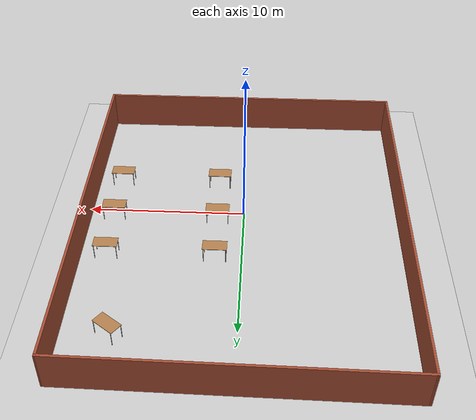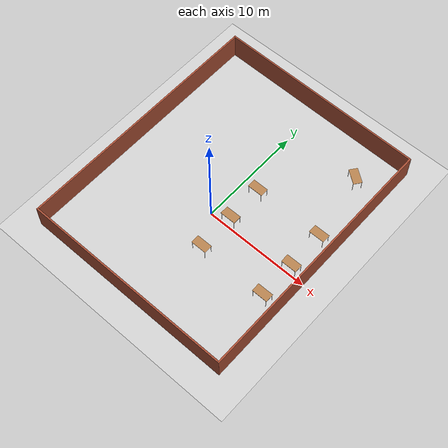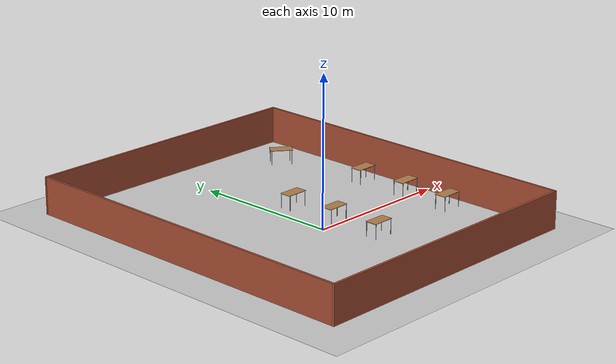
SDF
<sdf version="1.6">
 <world name="default">
  <model name="ground_plane">
   <static>1</static>
   <link name="link">
    <collision name="collision">
     <geometry><plane><normal>0 0 1</normal><size>100 100</size></plane></geometry>
     <surface><friction><ode><mu>500</mu><mu2>10</mu2></ode></friction></surface>
     <max_contacts>20</max_contacts>
    </collision>
    <visual name="visual">
     <cast_shadows>0</cast_shadows>
     <geometry><plane><normal>0 0 1</normal><size>100 100</size></plane></geometry>
     <material>
      <script><uri>file://media/materials/scripts/gazebo.material</uri><name>Gazebo/Grey</name></script>
     </material>
    </visual>
   </link>
  </model>
  <model name="table">
   <static>1</static>
   <link name="link">
    <collision name="surface">
     <pose>0 0 1 0 -0 0</pose>
     <geometry><box><size>1.5 0.8 0.03</size></box></geometry>
     <surface><friction><ode><mu>0.6</mu><mu2>0.6</mu2></ode></friction></surface>
    </collision>
    <visual name="visual1">
     <pose>0 0 1 0 -0 0</pose>
     <geometry><box><size>1.5 0.8 0.03</size></box></geometry>
     <material>
      <script><uri>file://media/materials/scripts/gazebo.material</uri><name>Gazebo/Wood</name></script>
     </material>
    </visual>
    <collision name="front_left_leg">
     <pose>0.68 0.38 0.5 0 -0 0</pose>
     <geometry><cylinder><radius>0.02</radius><length>1</length></cylinder></geometry>
    </collision>
    <visual name="front_left_leg">
     <pose>0.68 0.38 0.5 0 -0 0</pose>
     <geometry><cylinder><radius>0.02</radius><length>1</length></cylinder></geometry>
     <material>
      <script><uri>file://media/materials/scripts/gazebo.material</uri><name>Gazebo/Grey</name></script>
     </material>
    </visual>
    <collision name="front_right_leg">
     <pose>0.68 -0.38 0.5 0 -0 0</pose>
     <geometry><cylinder><radius>0.02</radius><length>1</length></cylinder></geometry>
    </collision>
    <visual name="front_right_leg">
     <pose>0.68 -0.38 0.5 0 -0 0</pose>
     <geometry><cylinder><radius>0.02</radius><length>1</length></cylinder></geometry>
     <material>
      <script><uri>file://media/materials/scripts/gazebo.material</uri><name>Gazebo/Grey</name></script>
     </material>
    </visual>
    <collision name="back_right_leg">
     <pose>-0.68 -0.38 0.5 0 -0 0</pose>
     <geometry><cylinder><radius>0.02</radius><length>1</length></cylinder></geometry>
    </collision>
    <visual name="back_right_leg">
     <pose>-0.68 -0.38 0.5 0 -0 0</pose>
     <geometry><cylinder><radius>0.02</radius><length>1</length></cylinder></geometry>
     <material>
      <script><uri>file://media/materials/scripts/gazebo.material</uri><name>Gazebo/Grey</name></script>
     </material>
    </visual>
    <collision name="back_left_leg">
     <pose>-0.68 0.38 0.5 0 -0 0</pose>
     <geometry><cylinder><radius>0.02</radius><length>1</length></cylinder></geometry>
    </collision>
    <visual name="back_left_leg">
     <pose>-0.68 0.38 0.5 0 -0 0</pose>
     <geometry><cylinder><radius>0.02</radius><length>1</length></cylinder></geometry>
     <material>
      <script><uri>file://media/materials/scripts/gazebo.material</uri><name>Gazebo/Grey</name></script>
     </material>
    </visual>
   </link>
   <pose>8.25392 -3.02569 0 0 -0 0</pose>
  </model>
  <model name="table_0">
   <static>1</static>
   <link name="link">
    <collision name="surface">
     <pose>0 0 1 0 -0 0</pose>
     <geometry><box><size>1.5 0.8 0.03</size></box></geometry>
     <surface><friction><ode><mu>0.6</mu><mu2>0.6</mu2></ode></friction></surface>
    </collision>
    <visual name="visual1">
     <pose>0 0 1 0 -0 0</pose>
     <geometry><box><size>1.5 0.8 0.03</size></box></geometry>
     <material>
      <script><uri>file://media/materials/scripts/gazebo.material</uri><name>Gazebo/Wood</name></script>
     </material>
    </visual>
    <collision name="front_left_leg">
     <pose>0.68 0.38 0.5 0 -0 0</pose>
     <geometry><cylinder><radius>0.02</radius><length>1</length></cylinder></geometry>
    </collision>
    <visual name="front_left_leg">
     <pose>0.68 0.38 0.5 0 -0 0</pose>
     <geometry><cylinder><radius>0.02</radius><length>1</length></cylinder></geometry>
     <material>
      <script><uri>file://media/materials/scripts/gazebo.material</uri><name>Gazebo/Grey</name></script>
     </material>
    </visual>
    <collision name="front_right_leg">
     <pose>0.68 -0.38 0.5 0 -0 0</pose>
     <geometry><cylinder><radius>0.02</radius><length>1</length></cylinder></geometry>
    </collision>
    <visual name="front_right_leg">
     <pose>0.68 -0.38 0.5 0 -0 0</pose>
     <geometry><cylinder><radius>0.02</radius><length>1</length></cylinder></geometry>
     <material>
      <script><uri>file://media/materials/scripts/gazebo.material</uri><name>Gazebo/Grey</name></script>
     </material>
    </visual>
    <collision name="back_right_leg">
     <pose>-0.68 -0.38 0.5 0 -0 0</pose>
     <geometry><cylinder><radius>0.02</radius><length>1</length></cylinder></geometry>
    </collision>
    <visual name="back_right_leg">
     <pose>-0.68 -0.38 0.5 0 -0 0</pose>
     <geometry><cylinder><radius>0.02</radius><length>1</length></cylinder></geometry>
     <material>
      <script><uri>file://media/materials/scripts/gazebo.material</uri><name>Gazebo/Grey</name></script>
     </material>
    </visual>
    <collision name="back_left_leg">
     <pose>-0.68 0.38 0.5 0 -0 0</pose>
     <geometry><cylinder><radius>0.02</radius><length>1</length></cylinder></geometry>
    </collision>
    <visual name="back_left_leg">
     <pose>-0.68 0.38 0.5 0 -0 0</pose>
     <geometry><cylinder><radius>0.02</radius><length>1</length></cylinder></geometry>
     <material>
      <script><uri>file://media/materials/scripts/gazebo.material</uri><name>Gazebo/Grey</name></script>
     </material>
    </visual>
   </link>
   <pose>1.71953 -3.02612 0 0 -0 0</pose>
  </model>
  <model name="table_1">
   <static>1</static>
   <link name="link">
    <collision name="surface">
     <pose>0 0 1 0 -0 0</pose>
     <geometry><box><size>1.5 0.8 0.03</size></box></geometry>
     <surface><friction><ode><mu>0.6</mu><mu2>0.6</mu2></ode></friction></surface>
    </collision>
    <visual name="visual1">
     <pose>0 0 1 0 -0 0</pose>
     <geometry><box><size>1.5 0.8 0.03</size></box></geometry>
     <material>
      <script><uri>file://media/materials/scripts/gazebo.material</uri><name>Gazebo/Wood</name></script>
     </material>
    </visual>
    <collision name="front_left_leg">
     <pose>0.68 0.38 0.5 0 -0 0</pose>
     <geometry><cylinder><radius>0.02</radius><length>1</length></cylinder></geometry>
    </collision>
    <visual name="front_left_leg">
     <pose>0.68 0.38 0.5 0 -0 0</pose>
     <geometry><cylinder><radius>0.02</radius><length>1</length></cylinder></geometry>
     <material>
      <script><uri>file://media/materials/scripts/gazebo.material</uri><name>Gazebo/Grey</name></script>
     </material>
    </visual>
    <collision name="front_right_leg">
     <pose>0.68 -0.38 0.5 0 -0 0</pose>
     <geometry><cylinder><radius>0.02</radius><length>1</length></cylinder></geometry>
    </collision>
    <visual name="front_right_leg">
     <pose>0.68 -0.38 0.5 0 -0 0</pose>
     <geometry><cylinder><radius>0.02</radius><length>1</length></cylinder></geometry>
     <material>
      <script><uri>file://media/materials/scripts/gazebo.material</uri><name>Gazebo/Grey</name></script>
     </material>
    </visual>
    <collision name="back_right_leg">
     <pose>-0.68 -0.38 0.5 0 -0 0</pose>
     <geometry><cylinder><radius>0.02</radius><length>1</length></cylinder></geometry>
    </collision>
    <visual name="back_right_leg">
     <pose>-0.68 -0.38 0.5 0 -0 0</pose>
     <geometry><cylinder><radius>0.02</radius><length>1</length></cylinder></geometry>
     <material>
      <script><uri>file://media/materials/scripts/gazebo.material</uri><name>Gazebo/Grey</name></script>
     </material>
    </visual>
    <collision name="back_left_leg">
     <pose>-0.68 0.38 0.5 0 -0 0</pose>
     <geometry><cylinder><radius>0.02</radius><length>1</length></cylinder></geometry>
    </collision>
    <visual name="back_left_leg">
     <pose>-0.68 0.38 0.5 0 -0 0</pose>
     <geometry><cylinder><radius>0.02</radius><length>1</length></cylinder></geometry>
     <material>
      <script><uri>file://media/materials/scripts/gazebo.material</uri><name>Gazebo/Grey</name></script>
     </material>
    </visual>
   </link>
   <pose>8.31392 0.499747 0 0 -0 0</pose>
  </model>
  <model name="table_2">
   <static>1</static>
   <link name="link">
    <collision name="surface">
     <pose>0 0 1 0 -0 0</pose>
     <geometry><box><size>1.5 0.8 0.03</size></box></geometry>
     <surface><friction><ode><mu>0.6</mu><mu2>0.6</mu2></ode></friction></surface>
    </collision>
    <visual name="visual1">
     <pose>0 0 1 0 -0 0</pose>
     <geometry><box><size>1.5 0.8 0.03</size></box></geometry>
     <material>
      <script><uri>file://media/materials/scripts/gazebo.material</uri><name>Gazebo/Wood</name></script>
     </material>
    </visual>
    <collision name="front_left_leg">
     <pose>0.68 0.38 0.5 0 -0 0</pose>
     <geometry><cylinder><radius>0.02</radius><length>1</length></cylinder></geometry>
    </collision>
    <visual name="front_left_leg">
     <pose>0.68 0.38 0.5 0 -0 0</pose>
     <geometry><cylinder><radius>0.02</radius><length>1</length></cylinder></geometry>
     <material>
      <script><uri>file://media/materials/scripts/gazebo.material</uri><name>Gazebo/Grey</name></script>
     </material>
    </visual>
    <collision name="front_right_leg">
     <pose>0.68 -0.38 0.5 0 -0 0</pose>
     <geometry><cylinder><radius>0.02</radius><length>1</length></cylinder></geometry>
    </collision>
    <visual name="front_right_leg">
     <pose>0.68 -0.38 0.5 0 -0 0</pose>
     <geometry><cylinder><radius>0.02</radius><length>1</length></cylinder></geometry>
     <material>
      <script><uri>file://media/materials/scripts/gazebo.material</uri><name>Gazebo/Grey</name></script>
     </material>
    </visual>
    <collision name="back_right_leg">
     <pose>-0.68 -0.38 0.5 0 -0 0</pose>
     <geometry><cylinder><radius>0.02</radius><length>1</length></cylinder></geometry>
    </collision>
    <visual name="back_right_leg">
     <pose>-0.68 -0.38 0.5 0 -0 0</pose>
     <geometry><cylinder><radius>0.02</radius><length>1</length></cylinder></geometry>
     <material>
      <script><uri>file://media/materials/scripts/gazebo.material</uri><name>Gazebo/Grey</name></script>
     </material>
    </visual>
    <collision name="back_left_leg">
     <pose>-0.68 0.38 0.5 0 -0 0</pose>
     <geometry><cylinder><radius>0.02</radius><length>1</length></cylinder></geometry>
    </collision>
    <visual name="back_left_leg">
     <pose>-0.68 0.38 0.5 0 -0 0</pose>
     <geometry><cylinder><radius>0.02</radius><length>1</length></cylinder></geometry>
     <material>
      <script><uri>file://media/materials/scripts/gazebo.material</uri><name>Gazebo/Grey</name></script>
     </material>
    </visual>
   </link>
   <pose>1.67214 0.604931 0 0 -0 0</pose>
  </model>
  <model name="table_3">
   <static>1</static>
   <link name="link">
    <collision name="surface">
     <pose>0 0 1 0 -0 0</pose>
     <geometry><box><size>1.5 0.8 0.03</size></box></geometry>
     <surface><friction><ode><mu>0.6</mu><mu2>0.6</mu2></ode></friction></surface>
    </collision>
    <visual name="visual1">
     <pose>0 0 1 0 -0 0</pose>
     <geometry><box><size>1.5 0.8 0.03</size></box></geometry>
     <material>
      <script><uri>file://media/materials/scripts/gazebo.material</uri><name>Gazebo/Wood</name></script>
     </material>
    </visual>
    <collision name="front_left_leg">
     <pose>0.68 0.38 0.5 0 -0 0</pose>
     <geometry><cylinder><radius>0.02</radius><length>1</length></cylinder></geometry>
    </collision>
    <visual name="front_left_leg">
     <pose>0.68 0.38 0.5 0 -0 0</pose>
     <geometry><cylinder><radius>0.02</radius><length>1</length></cylinder></geometry>
     <material>
      <script><uri>file://media/materials/scripts/gazebo.material</uri><name>Gazebo/Grey</name></script>
     </material>
    </visual>
    <collision name="front_right_leg">
     <pose>0.68 -0.38 0.5 0 -0 0</pose>
     <geometry><cylinder><radius>0.02</radius><length>1</length></cylinder></geometry>
    </collision>
    <visual name="front_right_leg">
     <pose>0.68 -0.38 0.5 0 -0 0</pose>
     <geometry><cylinder><radius>0.02</radius><length>1</length></cylinder></geometry>
     <material>
      <script><uri>file://media/materials/scripts/gazebo.material</uri><name>Gazebo/Grey</name></script>
     </material>
    </visual>
    <collision name="back_right_leg">
     <pose>-0.68 -0.38 0.5 0 -0 0</pose>
     <geometry><cylinder><radius>0.02</radius><length>1</length></cylinder></geometry>
    </collision>
    <visual name="back_right_leg">
     <pose>-0.68 -0.38 0.5 0 -0 0</pose>
     <geometry><cylinder><radius>0.02</radius><length>1</length></cylinder></geometry>
     <material>
      <script><uri>file://media/materials/scripts/gazebo.material</uri><name>Gazebo/Grey</name></script>
     </material>
    </visual>
    <collision name="back_left_leg">
     <pose>-0.68 0.38 0.5 0 -0 0</pose>
     <geometry><cylinder><radius>0.02</radius><length>1</length></cylinder></geometry>
    </collision>
    <visual name="back_left_leg">
     <pose>-0.68 0.38 0.5 0 -0 0</pose>
     <geometry><cylinder><radius>0.02</radius><length>1</length></cylinder></geometry>
     <material>
      <script><uri>file://media/materials/scripts/gazebo.material</uri><name>Gazebo/Grey</name></script>
     </material>
    </visual>
   </link>
   <pose>8.27168 4.11192 0 0 -0 0</pose>
  </model>
  <model name="table_4">
   <static>1</static>
   <link name="link">
    <collision name="surface">
     <pose>0 0 1 0 -0 0</pose>
     <geometry><box><size>1.5 0.8 0.03</size></box></geometry>
     <surface><friction><ode><mu>0.6</mu><mu2>0.6</mu2></ode></friction></surface>
    </collision>
    <visual name="visual1">
     <pose>0 0 1 0 -0 0</pose>
     <geometry><box><size>1.5 0.8 0.03</size></box></geometry>
     <material>
      <script><uri>file://media/materials/scripts/gazebo.material</uri><name>Gazebo/Wood</name></script>
     </material>
    </visual>
    <collision name="front_left_leg">
     <pose>0.68 0.38 0.5 0 -0 0</pose>
     <geometry><cylinder><radius>0.02</radius><length>1</length></cylinder></geometry>
    </collision>
    <visual name="front_left_leg">
     <pose>0.68 0.38 0.5 0 -0 0</pose>
     <geometry><cylinder><radius>0.02</radius><length>1</length></cylinder></geometry>
     <material>
      <script><uri>file://media/materials/scripts/gazebo.material</uri><name>Gazebo/Grey</name></script>
     </material>
    </visual>
    <collision name="front_right_leg">
     <pose>0.68 -0.38 0.5 0 -0 0</pose>
     <geometry><cylinder><radius>0.02</radius><length>1</length></cylinder></geometry>
    </collision>
    <visual name="front_right_leg">
     <pose>0.68 -0.38 0.5 0 -0 0</pose>
     <geometry><cylinder><radius>0.02</radius><length>1</length></cylinder></geometry>
     <material>
      <script><uri>file://media/materials/scripts/gazebo.material</uri><name>Gazebo/Grey</name></script>
     </material>
    </visual>
    <collision name="back_right_leg">
     <pose>-0.68 -0.38 0.5 0 -0 0</pose>
     <geometry><cylinder><radius>0.02</radius><length>1</length></cylinder></geometry>
    </collision>
    <visual name="back_right_leg">
     <pose>-0.68 -0.38 0.5 0 -0 0</pose>
     <geometry><cylinder><radius>0.02</radius><length>1</length></cylinder></geometry>
     <material>
      <script><uri>file://media/materials/scripts/gazebo.material</uri><name>Gazebo/Grey</name></script>
     </material>
    </visual>
    <collision name="back_left_leg">
     <pose>-0.68 0.38 0.5 0 -0 0</pose>
     <geometry><cylinder><radius>0.02</radius><length>1</length></cylinder></geometry>
    </collision>
    <visual name="back_left_leg">
     <pose>-0.68 0.38 0.5 0 -0 0</pose>
     <geometry><cylinder><radius>0.02</radius><length>1</length></cylinder></geometry>
     <material>
      <script><uri>file://media/materials/scripts/gazebo.material</uri><name>Gazebo/Grey</name></script>
     </material>
    </visual>
   </link>
   <pose>1.63432 4.10419 0 0 -0 0</pose>
  </model>
  <model name="rest">
   <pose>0.004866 2.1053 0 0 -0 0</pose>
   <link name="Wall_0">
    <collision name="Wall_0_Collision">
     <geometry><box><size>20 0.15 2.5</size></box></geometry>
     <pose>0 0 1.25 0 -0 0</pose>
    </collision>
    <visual name="Wall_0_Visual">
     <pose>0 0 1.25 0 -0 0</pose>
     <geometry><box><size>20 0.15 2.5</size></box></geometry>
     <material>
      <script><uri>file://media/materials/scripts/gazebo.material</uri><name>Gazebo/Bricks</name></script>
      <ambient>1 1 1 1</ambient>
     </material>
     <meta><layer>0</layer></meta>
    </visual>
    <pose>0 -12.1755 0 0 -0 3.14159</pose>
   </link>
   <link name="Wall_2">
    <collision name="Wall_2_Collision">
     <geometry><box><size>24.5 0.15 2.5</size></box></geometry>
     <pose>0 0 1.25 0 -0 0</pose>
    </collision>
    <visual name="Wall_2_Visual">
     <pose>0 0 1.25 0 -0 0</pose>
     <geometry><box><size>24.5 0.15 2.5</size></box></geometry>
     <material>
      <script><uri>file://media/materials/scripts/gazebo.material</uri><name>Gazebo/Bricks</name></script>
      <ambient>1 1 1 1</ambient>
     </material>
     <meta><layer>0</layer></meta>
    </visual>
    <pose>-9.925 -0.000468 0 0 -0 1.5708</pose>
   </link>
   <link name="Wall_4">
    <collision name="Wall_4_Collision">
     <geometry><box><size>24.25 0.15 2.5</size></box></geometry>
     <pose>0 0 1.25 0 -0 0</pose>
    </collision>
    <visual name="Wall_4_Visual">
     <pose>0 0 1.25 0 -0 0</pose>
     <geometry><box><size>24.25 0.15 2.5</size></box></geometry>
     <material>
      <script><uri>file://media/materials/scripts/gazebo.material</uri><name>Gazebo/Bricks</name></script>
      <ambient>1 1 1 1</ambient>
     </material>
     <meta><layer>0</layer></meta>
    </visual>
    <pose>9.925 -0.125468 0 0 -0 1.5708</pose>
   </link>
   <link name="Wall_5">
    <collision name="Wall_5_Collision">
     <geometry><box><size>20.0016 0.15 2.5</size></box></geometry>
     <pose>0 0 1.25 0 -0 0</pose>
    </collision>
    <visual name="Wall_5_Visual">
     <pose>0 0 1.25 0 -0 0</pose>
     <geometry><box><size>20.0016 0.15 2.5</size></box></geometry>
     <material>
      <script><uri>file://media/materials/scripts/gazebo.material</uri><name>Gazebo/Bricks</name></script>
      <ambient>1 1 1 1</ambient>
     </material>
     <meta><layer>0</layer></meta>
    </visual>
    <pose>0 12.0495 0 0 -0 3.129</pose>
   </link>
   <static>1</static>
  </model>
  <model name="table_13">
   <static>1</static>
   <link name="link">
    <collision name="surface">
     <pose>0 0 1 0 -0 0</pose>
     <geometry><box><size>1.5 0.8 0.03</size></box></geometry>
     <surface><friction><ode><mu>0.6</mu><mu2>0.6</mu2></ode></friction></surface>
    </collision>
    <visual name="visual1">
     <pose>0 0 1 0 -0 0</pose>
     <geometry><box><size>1.5 0.8 0.03</size></box></geometry>
     <material>
      <script><uri>file://media/materials/scripts/gazebo.material</uri><name>Gazebo/Wood</name></script>
     </material>
    </visual>
    <collision name="front_left_leg">
     <pose>0.68 0.38 0.5 0 -0 0</pose>
     <geometry><cylinder><radius>0.02</radius><length>1</length></cylinder></geometry>
    </collision>
    <visual name="front_left_leg">
     <pose>0.68 0.38 0.5 0 -0 0</pose>
     <geometry><cylinder><radius>0.02</radius><length>1</length></cylinder></geometry>
     <material>
      <script><uri>file://media/materials/scripts/gazebo.material</uri><name>Gazebo/Grey</name></script>
     </material>
    </visual>
    <collision name="front_right_leg">
     <pose>0.68 -0.38 0.5 0 -0 0</pose>
     <geometry><cylinder><radius>0.02</radius><length>1</length></cylinder></geometry>
    </collision>
    <visual name="front_right_leg">
     <pose>0.68 -0.38 0.5 0 -0 0</pose>
     <geometry><cylinder><radius>0.02</radius><length>1</length></cylinder></geometry>
     <material>
      <script><uri>file://media/materials/scripts/gazebo.material</uri><name>Gazebo/Grey</name></script>
     </material>
    </visual>
    <collision name="back_right_leg">
     <pose>-0.68 -0.38 0.5 0 -0 0</pose>
     <geometry><cylinder><radius>0.02</radius><length>1</length></cylinder></geometry>
    </collision>
    <visual name="back_right_leg">
     <pose>-0.68 -0.38 0.5 0 -0 0</pose>
     <geometry><cylinder><radius>0.02</radius><length>1</length></cylinder></geometry>
     <material>
      <script><uri>file://media/materials/scripts/gazebo.material</uri><name>Gazebo/Grey</name></script>
     </material>
    </visual>
    <collision name="back_left_leg">
     <pose>-0.68 0.38 0.5 0 -0 0</pose>
     <geometry><cylinder><radius>0.02</radius><length>1</length></cylinder></geometry>
    </collision>
    <visual name="back_left_leg">
     <pose>-0.68 0.38 0.5 0 -0 0</pose>
     <geometry><cylinder><radius>0.02</radius><length>1</length></cylinder></geometry>
     <material>
      <script><uri>file://media/materials/scripts/gazebo.material</uri><name>Gazebo/Grey</name></script>
     </material>
    </visual>
   </link>
   <pose>7.08317 10.4997 0 0 0 -0.637874</pose>
  </model>
 </world>
</sdf>
